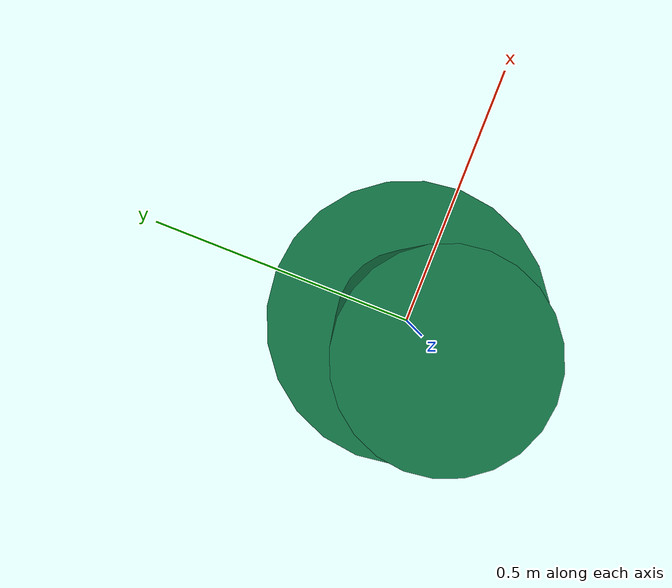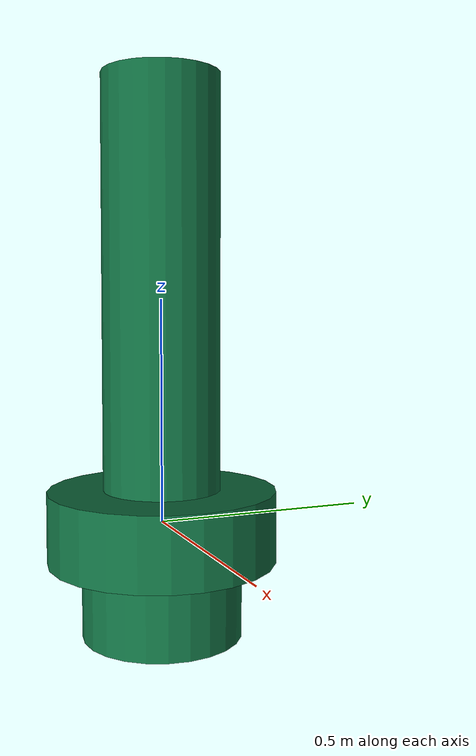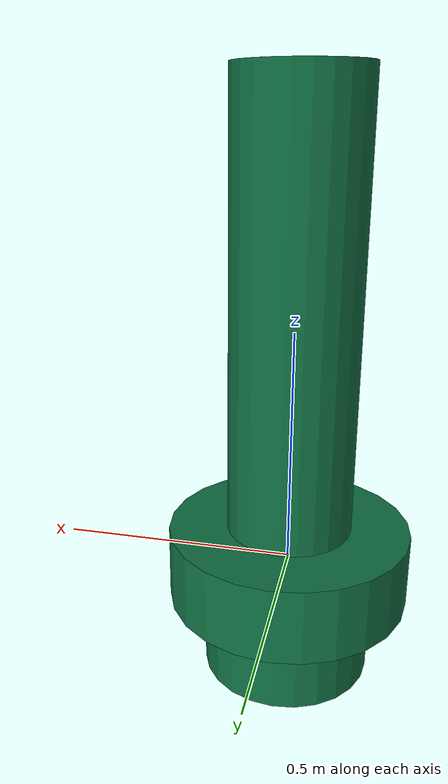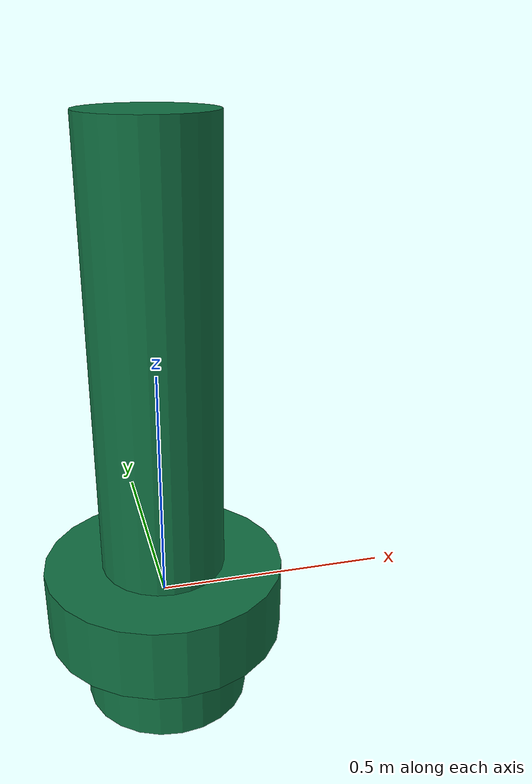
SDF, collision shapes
<?xml version="1.0"?>
<sdf version="1.9">
  <model name="roboboat_surmark_950400_green">
    <link name="link">
      <inertial>
        <pose>0 0 -0.2556 0 0 0</pose>
        <mass>34.7761</mass>
        <inertia>
          <ixx>4.71434</ixx>
          <ixy>0</ixy>
          <ixz>0</ixz>
          <iyy>4.71434</iyy>
          <iyz>0</iyz>
          <izz>0.391231</izz>
        </inertia>
      </inertial>
      <collision name="skirt_collision">
        <pose>0 0 -0.1708 0 0 0</pose>
        <geometry>
          <cylinder><radius>0.18</radius><length>0.1696</length></cylinder>
        </geometry>
      </collision>
      <collision name="ring_collision">
        <pose>0 0 -0.006 0 0 0</pose>
        <geometry>
          <cylinder><radius>0.257</radius><length>0.16</length></cylinder>
        </geometry>
      </collision>
      <collision name="column_collision">
        <pose>0 0 0.5335 0 0 0</pose>
        <geometry>
          <cylinder><radius>0.132</radius><length>0.9191</length></cylinder>
        </geometry>
      </collision>
      <visual name="visual">
        <geometry>
          <mesh>
            <uri>https://fuel.gazebosim.org/1.0/ngxingyu/models/surmark950400/tip/files/meshes/surmark950400.dae</uri>
          </mesh>
        </geometry>
        <material>
          <ambient>0.0627 0.4392 0.2588 1</ambient>
          <diffuse>0.0627 0.4392 0.2588 1</diffuse>
          <specular>0.0627 0.4392 0.2588 1</specular>
        </material>
      </visual>
    </link>
    <joint name="mooring" type="prismatic">
      <parent>world</parent>
      <child>link</child>
      <axis>
        <xyz>0 0 1</xyz>
      </axis>
    </joint>
    <plugin name="vrx::PolyhedraBuoyancyDrag" filename="libPolyhedraBuoyancyDrag.so">
      <linear_drag>25</linear_drag>
      <angular_drag>2</angular_drag>
      <buoyancy name="skirt">
        <link_name>link</link_name>
        <pose>0 0 -0.1708 0 0 0</pose>
        <geometry>
          <cylinder><radius>0.18</radius><length>0.1696</length></cylinder>
        </geometry>
      </buoyancy>
      <buoyancy name="ring">
        <link_name>link</link_name>
        <pose>0 0 -0.006 0 0 0</pose>
        <geometry>
          <cylinder><radius>0.257</radius><length>0.16</length></cylinder>
        </geometry>
      </buoyancy>
      <buoyancy name="column">
        <link_name>link</link_name>
        <pose>0 0 0.5335 0 0 0</pose>
        <geometry>
          <cylinder><radius>0.132</radius><length>0.9191</length></cylinder>
        </geometry>
      </buoyancy>
      <wavefield>
        <topic>/vrx/wavefield/parameters</topic>
      </wavefield>
    </plugin>
    <plugin filename="gz-sim-label-system" name="gz::sim::systems::Label">
      <label>11</label>
    </plugin>
  </model>
</sdf>
